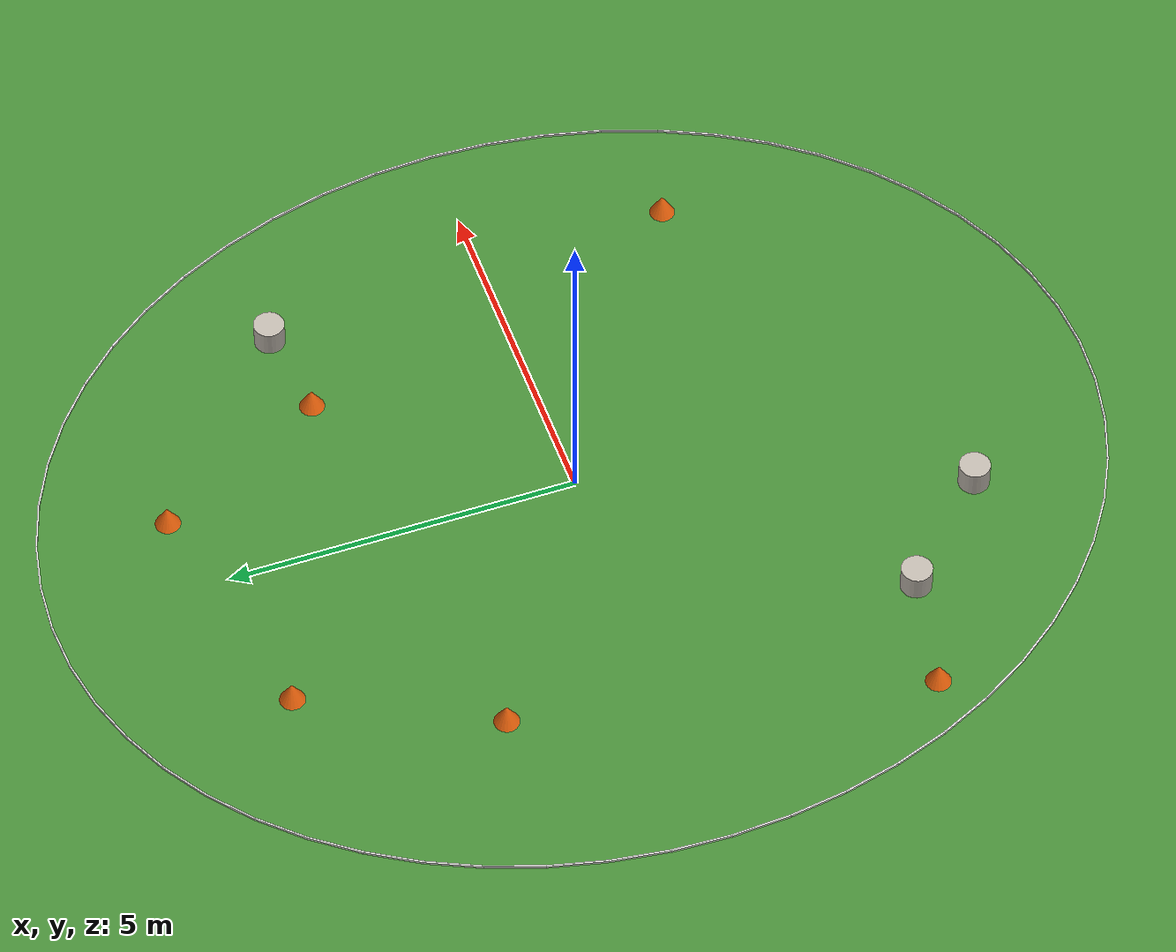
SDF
<sdf version="1.8">
 <world name="james_oval_world">
  <physics name="1ms" type="ignored">
   <max_step_size>0.001</max_step_size>
   <real_time_factor>1.0</real_time_factor>
  </physics>
  <plugin filename="libgz-sim-physics-system" name="gz::sim::systems::Physics"/>
  <plugin filename="libgz-sim-user-commands-system" name="gz::sim::systems::UserCommands"/>
  <plugin filename="libgz-sim-scene-broadcaster-system" name="gz::sim::systems::SceneBroadcaster"/>
  <plugin filename="libgz-sim-imu-system" name="gz::sim::systems::Imu"/>
  <plugin filename="libgz-sim-sensors-system.so" name="gz::sim::systems::Sensors"/>
  <plugin filename="libgz-sim-contact-system" name="gz::sim::systems::Contact"/>
  <light type="directional" name="sun">
   <pose>0 0 10 0 0 0</pose>
   <diffuse>0.8 0.8 0.8 1</diffuse>
   <specular>0.2 0.2 0.2 1</specular>
   <attenuation>
    <range>1000</range>
    <constant>0.9</constant>
    <linear>0.01</linear>
    <quadratic>0.001</quadratic>
   </attenuation>
   <direction>-0.5 0.1 -0.9</direction>
  </light>
  <model name="ground_plane">
   <static>true</static>
   <link name="link">
    <collision name="collision"><geometry><plane><normal>0 0 1</normal></plane></geometry></collision>
    <visual name="visual">
     <geometry><plane><normal>0 0 1</normal><size>22 22</size></plane></geometry>
     <material>
      <ambient>0.22 0.48 0.18 1</ambient>
      <diffuse>0.28 0.55 0.22 1</diffuse>
      <specular>0.12 0.12 0.12 1</specular>
     </material>
    </visual>
   </link>
  </model>
  <model name="oval_fence_00">
   <static>true</static>
   <pose>6.2402 0.4205 0.0175 0 0 1.6176</pose>
   <link name="link">
    <visual name="v">
     <geometry><box><size>0.8411 0.025 0.035</size></box></geometry>
     <material><ambient>0.95 0.95 0.95 1</ambient><diffuse>0.9 0.9 0.88 1</diffuse></material>
    </visual>
    <collision name="c"><geometry><box><size>0.8411 0.025 0.035</size></box></geometry></collision>
   </link>
  </model>
  <model name="oval_fence_01">
   <static>true</static>
   <pose>6.1617 1.2563 0.0175 0 0 1.7115</pose>
   <link name="link">
    <visual name="v">
     <geometry><box><size>0.8379 0.025 0.035</size></box></geometry>
     <material><ambient>0.95 0.95 0.95 1</ambient><diffuse>0.9 0.9 0.88 1</diffuse></material>
    </visual>
    <collision name="c"><geometry><box><size>0.8379 0.025 0.035</size></box></geometry></collision>
   </link>
  </model>
  <model name="oval_fence_02">
   <static>true</static>
   <pose>6.0057 2.0763 0.0175 0 0 1.8064</pose>
   <link name="link">
    <visual name="v">
     <geometry><box><size>0.8316 0.025 0.035</size></box></geometry>
     <material><ambient>0.95 0.95 0.95 1</ambient><diffuse>0.9 0.9 0.88 1</diffuse></material>
    </visual>
    <collision name="c"><geometry><box><size>0.8316 0.025 0.035</size></box></geometry></collision>
   </link>
  </model>
  <model name="oval_fence_03">
   <static>true</static>
   <pose>5.7742 2.8701 0.0175 0 0 1.9032</pose>
   <link name="link">
    <visual name="v">
     <geometry><box><size>0.8225 0.025 0.035</size></box></geometry>
     <material><ambient>0.95 0.95 0.95 1</ambient><diffuse>0.9 0.9 0.88 1</diffuse></material>
    </visual>
    <collision name="c"><geometry><box><size>0.8225 0.025 0.035</size></box></geometry></collision>
   </link>
  </model>
  <model name="oval_fence_04">
   <static>true</static>
   <pose>5.4701 3.6279 0.0175 0 0 2.0024</pose>
   <link name="link">
    <visual name="v">
     <geometry><box><size>0.8109 0.025 0.035</size></box></geometry>
     <material><ambient>0.95 0.95 0.95 1</ambient><diffuse>0.9 0.9 0.88 1</diffuse></material>
    </visual>
    <collision name="c"><geometry><box><size>0.8109 0.025 0.035</size></box></geometry></collision>
   </link>
  </model>
  <model name="oval_fence_05">
   <static>true</static>
   <pose>5.0973 4.34 0.0175 0 0 2.1048</pose>
   <link name="link">
    <visual name="v">
     <geometry><box><size>0.7973 0.025 0.035</size></box></geometry>
     <material><ambient>0.95 0.95 0.95 1</ambient><diffuse>0.9 0.9 0.88 1</diffuse></material>
    </visual>
    <collision name="c"><geometry><box><size>0.7973 0.025 0.035</size></box></geometry></collision>
   </link>
  </model>
  <model name="oval_fence_06">
   <static>true</static>
   <pose>4.6603 4.9976 0.0175 0 0 2.2109</pose>
   <link name="link">
    <visual name="v">
     <geometry><box><size>0.7823 0.025 0.035</size></box></geometry>
     <material><ambient>0.95 0.95 0.95 1</ambient><diffuse>0.9 0.9 0.88 1</diffuse></material>
    </visual>
    <collision name="c"><geometry><box><size>0.7823 0.025 0.035</size></box></geometry></collision>
   </link>
  </model>
  <model name="oval_fence_07">
   <static>true</static>
   <pose>4.1647 5.5923 0.0175 0 0 2.3213</pose>
   <link name="link">
    <visual name="v">
     <geometry><box><size>0.7667 0.025 0.035</size></box></geometry>
     <material><ambient>0.95 0.95 0.95 1</ambient><diffuse>0.9 0.9 0.88 1</diffuse></material>
    </visual>
    <collision name="c"><geometry><box><size>0.7667 0.025 0.035</size></box></geometry></collision>
   </link>
  </model>
  <model name="oval_fence_08">
   <static>true</static>
   <pose>3.6167 6.1167 0.0175 0 0 2.4363</pose>
   <link name="link">
    <visual name="v">
     <geometry><box><size>0.7511 0.025 0.035</size></box></geometry>
     <material><ambient>0.95 0.95 0.95 1</ambient><diffuse>0.9 0.9 0.88 1</diffuse></material>
    </visual>
    <collision name="c"><geometry><box><size>0.7511 0.025 0.035</size></box></geometry></collision>
   </link>
  </model>
  <model name="oval_fence_09">
   <static>true</static>
   <pose>3.0232 6.5642 0.0175 0 0 2.556</pose>
   <link name="link">
    <visual name="v">
     <geometry><box><size>0.7365 0.025 0.035</size></box></geometry>
     <material><ambient>0.95 0.95 0.95 1</ambient><diffuse>0.9 0.9 0.88 1</diffuse></material>
    </visual>
    <collision name="c"><geometry><box><size>0.7365 0.025 0.035</size></box></geometry></collision>
   </link>
  </model>
  <model name="oval_fence_10">
   <static>true</static>
   <pose>2.3918 6.9291 0.0175 0 0 2.6803</pose>
   <link name="link">
    <visual name="v">
     <geometry><box><size>0.7235 0.025 0.035</size></box></geometry>
     <material><ambient>0.95 0.95 0.95 1</ambient><diffuse>0.9 0.9 0.88 1</diffuse></material>
    </visual>
    <collision name="c"><geometry><box><size>0.7235 0.025 0.035</size></box></geometry></collision>
   </link>
  </model>
  <model name="oval_fence_11">
   <static>true</static>
   <pose>1.7302 7.2069 0.0175 0 0 2.8087</pose>
   <link name="link">
    <visual name="v">
     <geometry><box><size>0.713 0.025 0.035</size></box></geometry>
     <material><ambient>0.95 0.95 0.95 1</ambient><diffuse>0.9 0.9 0.88 1</diffuse></material>
    </visual>
    <collision name="c"><geometry><box><size>0.713 0.025 0.035</size></box></geometry></collision>
   </link>
  </model>
  <model name="oval_fence_12">
   <static>true</static>
   <pose>1.0469 7.394 0.0175 0 0 2.9405</pose>
   <link name="link">
    <visual name="v">
     <geometry><box><size>0.7056 0.025 0.035</size></box></geometry>
     <material><ambient>0.95 0.95 0.95 1</ambient><diffuse>0.9 0.9 0.88 1</diffuse></material>
    </visual>
    <collision name="c"><geometry><box><size>0.7056 0.025 0.035</size></box></geometry></collision>
   </link>
  </model>
  <model name="oval_fence_13">
   <static>true</static>
   <pose>0.3504 7.4882 0.0175 0 0 3.0743</pose>
   <link name="link">
    <visual name="v">
     <geometry><box><size>0.7017 0.025 0.035</size></box></geometry>
     <material><ambient>0.95 0.95 0.95 1</ambient><diffuse>0.9 0.9 0.88 1</diffuse></material>
    </visual>
    <collision name="c"><geometry><box><size>0.7017 0.025 0.035</size></box></geometry></collision>
   </link>
  </model>
  <model name="oval_fence_14">
   <static>true</static>
   <pose>-0.3504 7.4882 0.0175 0 0 -3.0743</pose>
   <link name="link">
    <visual name="v">
     <geometry><box><size>0.7017 0.025 0.035</size></box></geometry>
     <material><ambient>0.95 0.95 0.95 1</ambient><diffuse>0.9 0.9 0.88 1</diffuse></material>
    </visual>
    <collision name="c"><geometry><box><size>0.7017 0.025 0.035</size></box></geometry></collision>
   </link>
  </model>
  <model name="oval_fence_15">
   <static>true</static>
   <pose>-1.0469 7.394 0.0175 0 0 -2.9405</pose>
   <link name="link">
    <visual name="v">
     <geometry><box><size>0.7056 0.025 0.035</size></box></geometry>
     <material><ambient>0.95 0.95 0.95 1</ambient><diffuse>0.9 0.9 0.88 1</diffuse></material>
    </visual>
    <collision name="c"><geometry><box><size>0.7056 0.025 0.035</size></box></geometry></collision>
   </link>
  </model>
  <model name="oval_fence_16">
   <static>true</static>
   <pose>-1.7302 7.2069 0.0175 0 0 -2.8087</pose>
   <link name="link">
    <visual name="v">
     <geometry><box><size>0.713 0.025 0.035</size></box></geometry>
     <material><ambient>0.95 0.95 0.95 1</ambient><diffuse>0.9 0.9 0.88 1</diffuse></material>
    </visual>
    <collision name="c"><geometry><box><size>0.713 0.025 0.035</size></box></geometry></collision>
   </link>
  </model>
  <model name="oval_fence_17">
   <static>true</static>
   <pose>-2.3918 6.9291 0.0175 0 0 -2.6803</pose>
   <link name="link">
    <visual name="v">
     <geometry><box><size>0.7235 0.025 0.035</size></box></geometry>
     <material><ambient>0.95 0.95 0.95 1</ambient><diffuse>0.9 0.9 0.88 1</diffuse></material>
    </visual>
    <collision name="c"><geometry><box><size>0.7235 0.025 0.035</size></box></geometry></collision>
   </link>
  </model>
  <model name="oval_fence_18">
   <static>true</static>
   <pose>-3.0232 6.5642 0.0175 0 0 -2.556</pose>
   <link name="link">
    <visual name="v">
     <geometry><box><size>0.7365 0.025 0.035</size></box></geometry>
     <material><ambient>0.95 0.95 0.95 1</ambient><diffuse>0.9 0.9 0.88 1</diffuse></material>
    </visual>
    <collision name="c"><geometry><box><size>0.7365 0.025 0.035</size></box></geometry></collision>
   </link>
  </model>
  <model name="oval_fence_19">
   <static>true</static>
   <pose>-3.6167 6.1167 0.0175 0 0 -2.4363</pose>
   <link name="link">
    <visual name="v">
     <geometry><box><size>0.7511 0.025 0.035</size></box></geometry>
     <material><ambient>0.95 0.95 0.95 1</ambient><diffuse>0.9 0.9 0.88 1</diffuse></material>
    </visual>
    <collision name="c"><geometry><box><size>0.7511 0.025 0.035</size></box></geometry></collision>
   </link>
  </model>
  <model name="oval_fence_20">
   <static>true</static>
   <pose>-4.1647 5.5923 0.0175 0 0 -2.3213</pose>
   <link name="link">
    <visual name="v">
     <geometry><box><size>0.7667 0.025 0.035</size></box></geometry>
     <material><ambient>0.95 0.95 0.95 1</ambient><diffuse>0.9 0.9 0.88 1</diffuse></material>
    </visual>
    <collision name="c"><geometry><box><size>0.7667 0.025 0.035</size></box></geometry></collision>
   </link>
  </model>
  <model name="oval_fence_21">
   <static>true</static>
   <pose>-4.6603 4.9976 0.0175 0 0 -2.2109</pose>
   <link name="link">
    <visual name="v">
     <geometry><box><size>0.7823 0.025 0.035</size></box></geometry>
     <material><ambient>0.95 0.95 0.95 1</ambient><diffuse>0.9 0.9 0.88 1</diffuse></material>
    </visual>
    <collision name="c"><geometry><box><size>0.7823 0.025 0.035</size></box></geometry></collision>
   </link>
  </model>
  <model name="oval_fence_22">
   <static>true</static>
   <pose>-5.0973 4.34 0.0175 0 0 -2.1048</pose>
   <link name="link">
    <visual name="v">
     <geometry><box><size>0.7973 0.025 0.035</size></box></geometry>
     <material><ambient>0.95 0.95 0.95 1</ambient><diffuse>0.9 0.9 0.88 1</diffuse></material>
    </visual>
    <collision name="c"><geometry><box><size>0.7973 0.025 0.035</size></box></geometry></collision>
   </link>
  </model>
  <model name="oval_fence_23">
   <static>true</static>
   <pose>-5.4701 3.6279 0.0175 0 0 -2.0024</pose>
   <link name="link">
    <visual name="v">
     <geometry><box><size>0.8109 0.025 0.035</size></box></geometry>
     <material><ambient>0.95 0.95 0.95 1</ambient><diffuse>0.9 0.9 0.88 1</diffuse></material>
    </visual>
    <collision name="c"><geometry><box><size>0.8109 0.025 0.035</size></box></geometry></collision>
   </link>
  </model>
  <model name="oval_fence_24">
   <static>true</static>
   <pose>-5.7742 2.8701 0.0175 0 0 -1.9032</pose>
   <link name="link">
    <visual name="v">
     <geometry><box><size>0.8225 0.025 0.035</size></box></geometry>
     <material><ambient>0.95 0.95 0.95 1</ambient><diffuse>0.9 0.9 0.88 1</diffuse></material>
    </visual>
    <collision name="c"><geometry><box><size>0.8225 0.025 0.035</size></box></geometry></collision>
   </link>
  </model>
  <model name="oval_fence_25">
   <static>true</static>
   <pose>-6.0057 2.0763 0.0175 0 0 -1.8064</pose>
   <link name="link">
    <visual name="v">
     <geometry><box><size>0.8316 0.025 0.035</size></box></geometry>
     <material><ambient>0.95 0.95 0.95 1</ambient><diffuse>0.9 0.9 0.88 1</diffuse></material>
    </visual>
    <collision name="c"><geometry><box><size>0.8316 0.025 0.035</size></box></geometry></collision>
   </link>
  </model>
  <model name="oval_fence_26">
   <static>true</static>
   <pose>-6.1617 1.2563 0.0175 0 0 -1.7115</pose>
   <link name="link">
    <visual name="v">
     <geometry><box><size>0.8379 0.025 0.035</size></box></geometry>
     <material><ambient>0.95 0.95 0.95 1</ambient><diffuse>0.9 0.9 0.88 1</diffuse></material>
    </visual>
    <collision name="c"><geometry><box><size>0.8379 0.025 0.035</size></box></geometry></collision>
   </link>
  </model>
  <model name="oval_fence_27">
   <static>true</static>
   <pose>-6.2402 0.4205 0.0175 0 0 -1.6176</pose>
   <link name="link">
    <visual name="v">
     <geometry><box><size>0.8411 0.025 0.035</size></box></geometry>
     <material><ambient>0.95 0.95 0.95 1</ambient><diffuse>0.9 0.9 0.88 1</diffuse></material>
    </visual>
    <collision name="c"><geometry><box><size>0.8411 0.025 0.035</size></box></geometry></collision>
   </link>
  </model>
  <model name="oval_fence_28">
   <static>true</static>
   <pose>-6.2402 -0.4205 0.0175 0 0 -1.524</pose>
   <link name="link">
    <visual name="v">
     <geometry><box><size>0.8411 0.025 0.035</size></box></geometry>
     <material><ambient>0.95 0.95 0.95 1</ambient><diffuse>0.9 0.9 0.88 1</diffuse></material>
    </visual>
    <collision name="c"><geometry><box><size>0.8411 0.025 0.035</size></box></geometry></collision>
   </link>
  </model>
  <model name="oval_fence_29">
   <static>true</static>
   <pose>-6.1617 -1.2563 0.0175 0 0 -1.4301</pose>
   <link name="link">
    <visual name="v">
     <geometry><box><size>0.8379 0.025 0.035</size></box></geometry>
     <material><ambient>0.95 0.95 0.95 1</ambient><diffuse>0.9 0.9 0.88 1</diffuse></material>
    </visual>
    <collision name="c"><geometry><box><size>0.8379 0.025 0.035</size></box></geometry></collision>
   </link>
  </model>
  <model name="oval_fence_30">
   <static>true</static>
   <pose>-6.0057 -2.0763 0.0175 0 0 -1.3352</pose>
   <link name="link">
    <visual name="v">
     <geometry><box><size>0.8316 0.025 0.035</size></box></geometry>
     <material><ambient>0.95 0.95 0.95 1</ambient><diffuse>0.9 0.9 0.88 1</diffuse></material>
    </visual>
    <collision name="c"><geometry><box><size>0.8316 0.025 0.035</size></box></geometry></collision>
   </link>
  </model>
  <model name="oval_fence_31">
   <static>true</static>
   <pose>-5.7742 -2.8701 0.0175 0 0 -1.2384</pose>
   <link name="link">
    <visual name="v">
     <geometry><box><size>0.8225 0.025 0.035</size></box></geometry>
     <material><ambient>0.95 0.95 0.95 1</ambient><diffuse>0.9 0.9 0.88 1</diffuse></material>
    </visual>
    <collision name="c"><geometry><box><size>0.8225 0.025 0.035</size></box></geometry></collision>
   </link>
  </model>
  <model name="oval_fence_32">
   <static>true</static>
   <pose>-5.4701 -3.6279 0.0175 0 0 -1.1392</pose>
   <link name="link">
    <visual name="v">
     <geometry><box><size>0.8109 0.025 0.035</size></box></geometry>
     <material><ambient>0.95 0.95 0.95 1</ambient><diffuse>0.9 0.9 0.88 1</diffuse></material>
    </visual>
    <collision name="c"><geometry><box><size>0.8109 0.025 0.035</size></box></geometry></collision>
   </link>
  </model>
  <model name="oval_fence_33">
   <static>true</static>
   <pose>-5.0973 -4.34 0.0175 0 0 -1.0368</pose>
   <link name="link">
    <visual name="v">
     <geometry><box><size>0.7973 0.025 0.035</size></box></geometry>
     <material><ambient>0.95 0.95 0.95 1</ambient><diffuse>0.9 0.9 0.88 1</diffuse></material>
    </visual>
    <collision name="c"><geometry><box><size>0.7973 0.025 0.035</size></box></geometry></collision>
   </link>
  </model>
  <model name="oval_fence_34">
   <static>true</static>
   <pose>-4.6603 -4.9976 0.0175 0 0 -0.9307</pose>
   <link name="link">
    <visual name="v">
     <geometry><box><size>0.7823 0.025 0.035</size></box></geometry>
     <material><ambient>0.95 0.95 0.95 1</ambient><diffuse>0.9 0.9 0.88 1</diffuse></material>
    </visual>
    <collision name="c"><geometry><box><size>0.7823 0.025 0.035</size></box></geometry></collision>
   </link>
  </model>
  <model name="oval_fence_35">
   <static>true</static>
   <pose>-4.1647 -5.5923 0.0175 0 0 -0.8203</pose>
   <link name="link">
    <visual name="v">
     <geometry><box><size>0.7667 0.025 0.035</size></box></geometry>
     <material><ambient>0.95 0.95 0.95 1</ambient><diffuse>0.9 0.9 0.88 1</diffuse></material>
    </visual>
    <collision name="c"><geometry><box><size>0.7667 0.025 0.035</size></box></geometry></collision>
   </link>
  </model>
  <model name="oval_fence_36">
   <static>true</static>
   <pose>-3.6167 -6.1167 0.0175 0 0 -0.7053</pose>
   <link name="link">
    <visual name="v">
     <geometry><box><size>0.7511 0.025 0.035</size></box></geometry>
     <material><ambient>0.95 0.95 0.95 1</ambient><diffuse>0.9 0.9 0.88 1</diffuse></material>
    </visual>
    <collision name="c"><geometry><box><size>0.7511 0.025 0.035</size></box></geometry></collision>
   </link>
  </model>
  <model name="oval_fence_37">
   <static>true</static>
   <pose>-3.0232 -6.5642 0.0175 0 0 -0.5856</pose>
   <link name="link">
    <visual name="v">
     <geometry><box><size>0.7365 0.025 0.035</size></box></geometry>
     <material><ambient>0.95 0.95 0.95 1</ambient><diffuse>0.9 0.9 0.88 1</diffuse></material>
    </visual>
    <collision name="c"><geometry><box><size>0.7365 0.025 0.035</size></box></geometry></collision>
   </link>
  </model>
  <model name="oval_fence_38">
   <static>true</static>
   <pose>-2.3918 -6.9291 0.0175 0 0 -0.4613</pose>
   <link name="link">
    <visual name="v">
     <geometry><box><size>0.7235 0.025 0.035</size></box></geometry>
     <material><ambient>0.95 0.95 0.95 1</ambient><diffuse>0.9 0.9 0.88 1</diffuse></material>
    </visual>
    <collision name="c"><geometry><box><size>0.7235 0.025 0.035</size></box></geometry></collision>
   </link>
  </model>
  <model name="oval_fence_39">
   <static>true</static>
   <pose>-1.7302 -7.2069 0.0175 0 0 -0.3329</pose>
   <link name="link">
    <visual name="v">
     <geometry><box><size>0.713 0.025 0.035</size></box></geometry>
     <material><ambient>0.95 0.95 0.95 1</ambient><diffuse>0.9 0.9 0.88 1</diffuse></material>
    </visual>
    <collision name="c"><geometry><box><size>0.713 0.025 0.035</size></box></geometry></collision>
   </link>
  </model>
  <model name="oval_fence_40">
   <static>true</static>
   <pose>-1.0469 -7.394 0.0175 0 0 -0.2011</pose>
   <link name="link">
    <visual name="v">
     <geometry><box><size>0.7056 0.025 0.035</size></box></geometry>
     <material><ambient>0.95 0.95 0.95 1</ambient><diffuse>0.9 0.9 0.88 1</diffuse></material>
    </visual>
    <collision name="c"><geometry><box><size>0.7056 0.025 0.035</size></box></geometry></collision>
   </link>
  </model>
  <model name="oval_fence_41">
   <static>true</static>
   <pose>-0.3504 -7.4882 0.0175 0 0 -0.0673</pose>
   <link name="link">
    <visual name="v">
     <geometry><box><size>0.7017 0.025 0.035</size></box></geometry>
     <material><ambient>0.95 0.95 0.95 1</ambient><diffuse>0.9 0.9 0.88 1</diffuse></material>
    </visual>
    <collision name="c"><geometry><box><size>0.7017 0.025 0.035</size></box></geometry></collision>
   </link>
  </model>
  <model name="oval_fence_42">
   <static>true</static>
   <pose>0.3504 -7.4882 0.0175 0 0 0.0673</pose>
   <link name="link">
    <visual name="v">
     <geometry><box><size>0.7017 0.025 0.035</size></box></geometry>
     <material><ambient>0.95 0.95 0.95 1</ambient><diffuse>0.9 0.9 0.88 1</diffuse></material>
    </visual>
    <collision name="c"><geometry><box><size>0.7017 0.025 0.035</size></box></geometry></collision>
   </link>
  </model>
  <model name="oval_fence_43">
   <static>true</static>
   <pose>1.0469 -7.394 0.0175 0 0 0.2011</pose>
   <link name="link">
    <visual name="v">
     <geometry><box><size>0.7056 0.025 0.035</size></box></geometry>
     <material><ambient>0.95 0.95 0.95 1</ambient><diffuse>0.9 0.9 0.88 1</diffuse></material>
    </visual>
    <collision name="c"><geometry><box><size>0.7056 0.025 0.035</size></box></geometry></collision>
   </link>
  </model>
  <model name="oval_fence_44">
   <static>true</static>
   <pose>1.7302 -7.2069 0.0175 0 0 0.3329</pose>
   <link name="link">
    <visual name="v">
     <geometry><box><size>0.713 0.025 0.035</size></box></geometry>
     <material><ambient>0.95 0.95 0.95 1</ambient><diffuse>0.9 0.9 0.88 1</diffuse></material>
    </visual>
    <collision name="c"><geometry><box><size>0.713 0.025 0.035</size></box></geometry></collision>
   </link>
  </model>
  <model name="oval_fence_45">
   <static>true</static>
   <pose>2.3918 -6.9291 0.0175 0 0 0.4613</pose>
   <link name="link">
    <visual name="v">
     <geometry><box><size>0.7235 0.025 0.035</size></box></geometry>
     <material><ambient>0.95 0.95 0.95 1</ambient><diffuse>0.9 0.9 0.88 1</diffuse></material>
    </visual>
    <collision name="c"><geometry><box><size>0.7235 0.025 0.035</size></box></geometry></collision>
   </link>
  </model>
  <model name="oval_fence_46">
   <static>true</static>
   <pose>3.0232 -6.5642 0.0175 0 0 0.5856</pose>
   <link name="link">
    <visual name="v">
     <geometry><box><size>0.7365 0.025 0.035</size></box></geometry>
     <material><ambient>0.95 0.95 0.95 1</ambient><diffuse>0.9 0.9 0.88 1</diffuse></material>
    </visual>
    <collision name="c"><geometry><box><size>0.7365 0.025 0.035</size></box></geometry></collision>
   </link>
  </model>
  <model name="oval_fence_47">
   <static>true</static>
   <pose>3.6167 -6.1167 0.0175 0 0 0.7053</pose>
   <link name="link">
    <visual name="v">
     <geometry><box><size>0.7511 0.025 0.035</size></box></geometry>
     <material><ambient>0.95 0.95 0.95 1</ambient><diffuse>0.9 0.9 0.88 1</diffuse></material>
    </visual>
    <collision name="c"><geometry><box><size>0.7511 0.025 0.035</size></box></geometry></collision>
   </link>
  </model>
  <model name="oval_fence_48">
   <static>true</static>
   <pose>4.1647 -5.5923 0.0175 0 0 0.8203</pose>
   <link name="link">
    <visual name="v">
     <geometry><box><size>0.7667 0.025 0.035</size></box></geometry>
     <material><ambient>0.95 0.95 0.95 1</ambient><diffuse>0.9 0.9 0.88 1</diffuse></material>
    </visual>
    <collision name="c"><geometry><box><size>0.7667 0.025 0.035</size></box></geometry></collision>
   </link>
  </model>
  <model name="oval_fence_49">
   <static>true</static>
   <pose>4.6603 -4.9976 0.0175 0 0 0.9307</pose>
   <link name="link">
    <visual name="v">
     <geometry><box><size>0.7823 0.025 0.035</size></box></geometry>
     <material><ambient>0.95 0.95 0.95 1</ambient><diffuse>0.9 0.9 0.88 1</diffuse></material>
    </visual>
    <collision name="c"><geometry><box><size>0.7823 0.025 0.035</size></box></geometry></collision>
   </link>
  </model>
  <model name="oval_fence_50">
   <static>true</static>
   <pose>5.0973 -4.34 0.0175 0 0 1.0368</pose>
   <link name="link">
    <visual name="v">
     <geometry><box><size>0.7973 0.025 0.035</size></box></geometry>
     <material><ambient>0.95 0.95 0.95 1</ambient><diffuse>0.9 0.9 0.88 1</diffuse></material>
    </visual>
    <collision name="c"><geometry><box><size>0.7973 0.025 0.035</size></box></geometry></collision>
   </link>
  </model>
  <model name="oval_fence_51">
   <static>true</static>
   <pose>5.4701 -3.6279 0.0175 0 0 1.1392</pose>
   <link name="link">
    <visual name="v">
     <geometry><box><size>0.8109 0.025 0.035</size></box></geometry>
     <material><ambient>0.95 0.95 0.95 1</ambient><diffuse>0.9 0.9 0.88 1</diffuse></material>
    </visual>
    <collision name="c"><geometry><box><size>0.8109 0.025 0.035</size></box></geometry></collision>
   </link>
  </model>
  <model name="oval_fence_52">
   <static>true</static>
   <pose>5.7742 -2.8701 0.0175 0 0 1.2384</pose>
   <link name="link">
    <visual name="v">
     <geometry><box><size>0.8225 0.025 0.035</size></box></geometry>
     <material><ambient>0.95 0.95 0.95 1</ambient><diffuse>0.9 0.9 0.88 1</diffuse></material>
    </visual>
    <collision name="c"><geometry><box><size>0.8225 0.025 0.035</size></box></geometry></collision>
   </link>
  </model>
  <model name="oval_fence_53">
   <static>true</static>
   <pose>6.0057 -2.0763 0.0175 0 0 1.3352</pose>
   <link name="link">
    <visual name="v">
     <geometry><box><size>0.8316 0.025 0.035</size></box></geometry>
     <material><ambient>0.95 0.95 0.95 1</ambient><diffuse>0.9 0.9 0.88 1</diffuse></material>
    </visual>
    <collision name="c"><geometry><box><size>0.8316 0.025 0.035</size></box></geometry></collision>
   </link>
  </model>
  <model name="oval_fence_54">
   <static>true</static>
   <pose>6.1617 -1.2563 0.0175 0 0 1.4301</pose>
   <link name="link">
    <visual name="v">
     <geometry><box><size>0.8379 0.025 0.035</size></box></geometry>
     <material><ambient>0.95 0.95 0.95 1</ambient><diffuse>0.9 0.9 0.88 1</diffuse></material>
    </visual>
    <collision name="c"><geometry><box><size>0.8379 0.025 0.035</size></box></geometry></collision>
   </link>
  </model>
  <model name="oval_fence_55">
   <static>true</static>
   <pose>6.2402 -0.4205 0.0175 0 0 1.524</pose>
   <link name="link">
    <visual name="v">
     <geometry><box><size>0.8411 0.025 0.035</size></box></geometry>
     <material><ambient>0.95 0.95 0.95 1</ambient><diffuse>0.9 0.9 0.88 1</diffuse></material>
    </visual>
    <collision name="c"><geometry><box><size>0.8411 0.025 0.035</size></box></geometry></collision>
   </link>
  </model>
  <model name="cone_01">
   <static>true</static>
   <pose>2.5 3.0 0.16 0 0 0.3</pose>
   <link name="link">
    <visual name="v">
     <geometry><cone><radius>0.18</radius><length>0.32</length></cone></geometry>
     <material><ambient>1.0 0.35 0.0 1</ambient><diffuse>0.95 0.4 0.05 1</diffuse></material>
    </visual>
    <collision name="c"><geometry><cone><radius>0.18</radius><length>0.32</length></cone></geometry></collision>
   </link>
  </model>
  <model name="cone_02">
   <static>true</static>
   <pose>-3.5 2.2 0.16 0 0 -0.5</pose>
   <link name="link">
    <visual name="v">
     <geometry><cone><radius>0.18</radius><length>0.32</length></cone></geometry>
     <material><ambient>1.0 0.35 0.0 1</ambient><diffuse>0.95 0.4 0.05 1</diffuse></material>
    </visual>
    <collision name="c"><geometry><cone><radius>0.18</radius><length>0.32</length></cone></geometry></collision>
   </link>
  </model>
  <model name="cone_03">
   <static>true</static>
   <pose>4.2 -2.8 0.16 0 0 1.2</pose>
   <link name="link">
    <visual name="v">
     <geometry><cone><radius>0.18</radius><length>0.32</length></cone></geometry>
     <material><ambient>1.0 0.35 0.0 1</ambient><diffuse>0.95 0.4 0.05 1</diffuse></material>
    </visual>
    <collision name="c"><geometry><cone><radius>0.18</radius><length>0.32</length></cone></geometry></collision>
   </link>
  </model>
  <model name="cone_04">
   <static>true</static>
   <pose>-4.8 -3.5 0.16 0 0 0.0</pose>
   <link name="link">
    <visual name="v">
     <geometry><cone><radius>0.18</radius><length>0.32</length></cone></geometry>
     <material><ambient>1.0 0.35 0.0 1</ambient><diffuse>0.95 0.4 0.05 1</diffuse></material>
    </visual>
    <collision name="c"><geometry><cone><radius>0.18</radius><length>0.32</length></cone></geometry></collision>
   </link>
  </model>
  <model name="cone_05">
   <static>true</static>
   <pose>1.2 5.5 0.16 0 0 2.1</pose>
   <link name="link">
    <visual name="v">
     <geometry><cone><radius>0.18</radius><length>0.32</length></cone></geometry>
     <material><ambient>1.0 0.35 0.0 1</ambient><diffuse>0.95 0.4 0.05 1</diffuse></material>
    </visual>
    <collision name="c"><geometry><cone><radius>0.18</radius><length>0.32</length></cone></geometry></collision>
   </link>
  </model>
  <model name="cone_06">
   <static>true</static>
   <pose>-2.2 4.8 0.16 0 0 -1.0</pose>
   <link name="link">
    <visual name="v">
     <geometry><cone><radius>0.18</radius><length>0.32</length></cone></geometry>
     <material><ambient>1.0 0.35 0.0 1</ambient><diffuse>0.95 0.4 0.05 1</diffuse></material>
    </visual>
    <collision name="c"><geometry><cone><radius>0.18</radius><length>0.32</length></cone></geometry></collision>
   </link>
  </model>
  <model name="bucket_01">
   <static>true</static>
   <pose>-3.2 -3.8 0.19 0 0 0.0</pose>
   <link name="link">
    <visual name="v">
     <geometry><cylinder><radius>0.22</radius><length>0.38</length></cylinder></geometry>
     <material><ambient>0.85 0.82 0.78 1</ambient><diffuse>0.75 0.72 0.68 1</diffuse></material>
    </visual>
    <collision name="c">
     <geometry><cylinder><radius>0.22</radius><length>0.38</length></cylinder></geometry>
    </collision>
   </link>
  </model>
  <model name="bucket_02">
   <static>true</static>
   <pose>3.8 3.2 0.19 0 0 0.4</pose>
   <link name="link">
    <visual name="v">
     <geometry><cylinder><radius>0.22</radius><length>0.38</length></cylinder></geometry>
     <material><ambient>0.85 0.82 0.78 1</ambient><diffuse>0.75 0.72 0.68 1</diffuse></material>
    </visual>
    <collision name="c">
     <geometry><cylinder><radius>0.22</radius><length>0.38</length></cylinder></geometry>
    </collision>
   </link>
  </model>
  <model name="bucket_03">
   <static>true</static>
   <pose>-1.8 -5.2 0.19 0 0 -0.2</pose>
   <link name="link">
    <visual name="v">
     <geometry><cylinder><radius>0.22</radius><length>0.38</length></cylinder></geometry>
     <material><ambient>0.85 0.82 0.78 1</ambient><diffuse>0.75 0.72 0.68 1</diffuse></material>
    </visual>
    <collision name="c">
     <geometry><cylinder><radius>0.22</radius><length>0.38</length></cylinder></geometry>
    </collision>
   </link>
  </model>
 </world>
</sdf>
